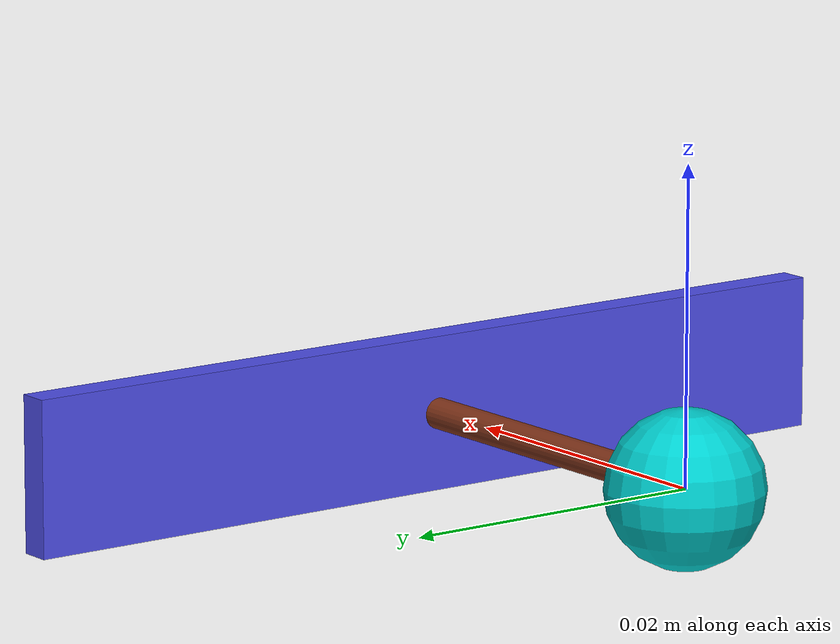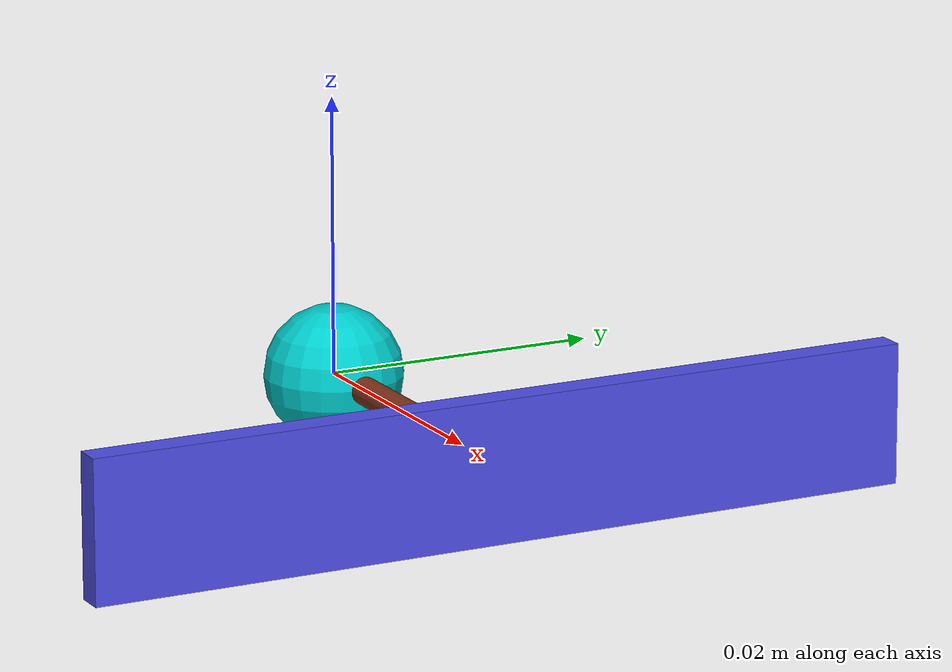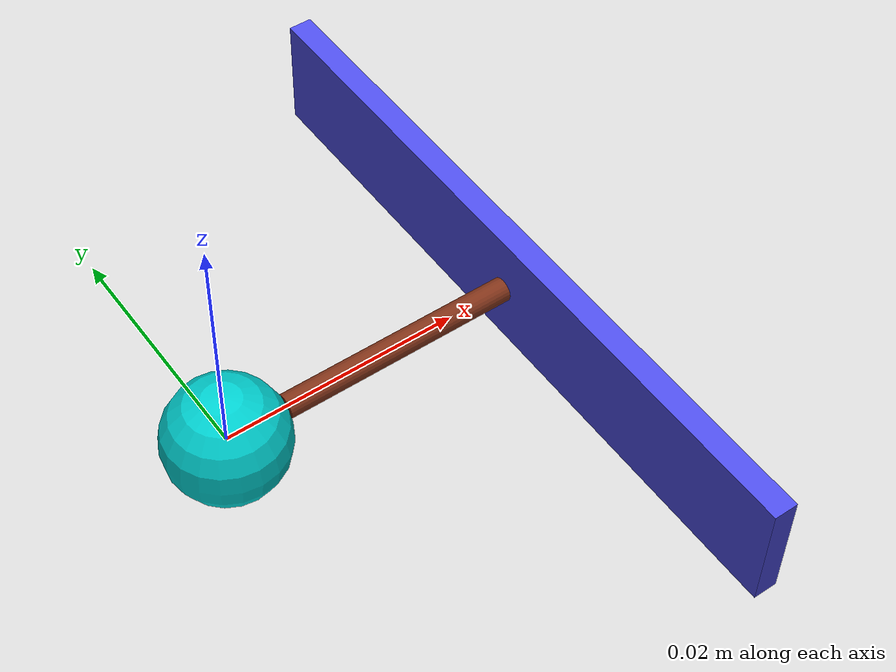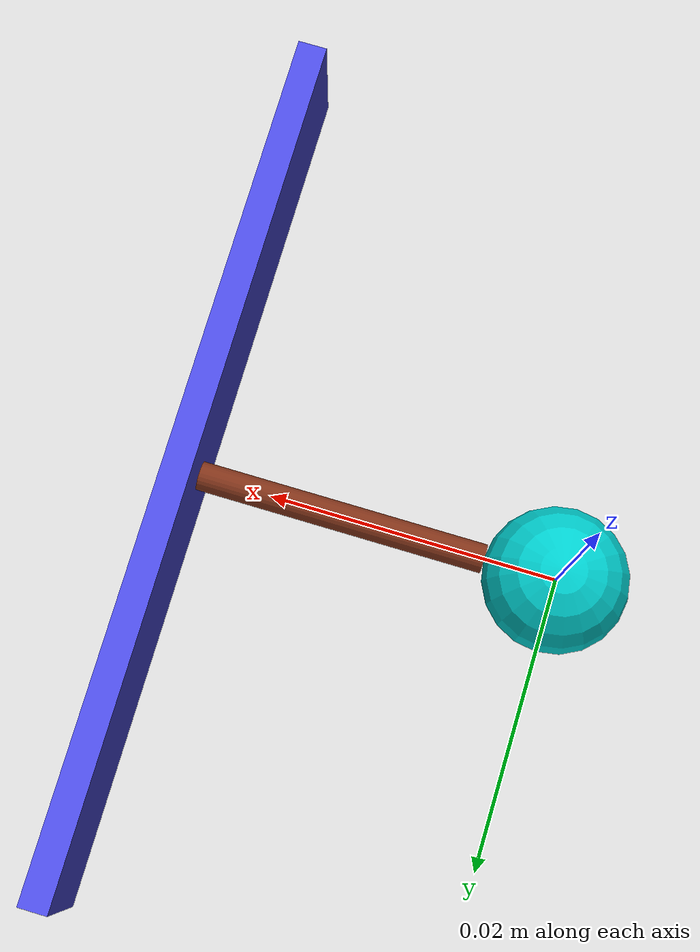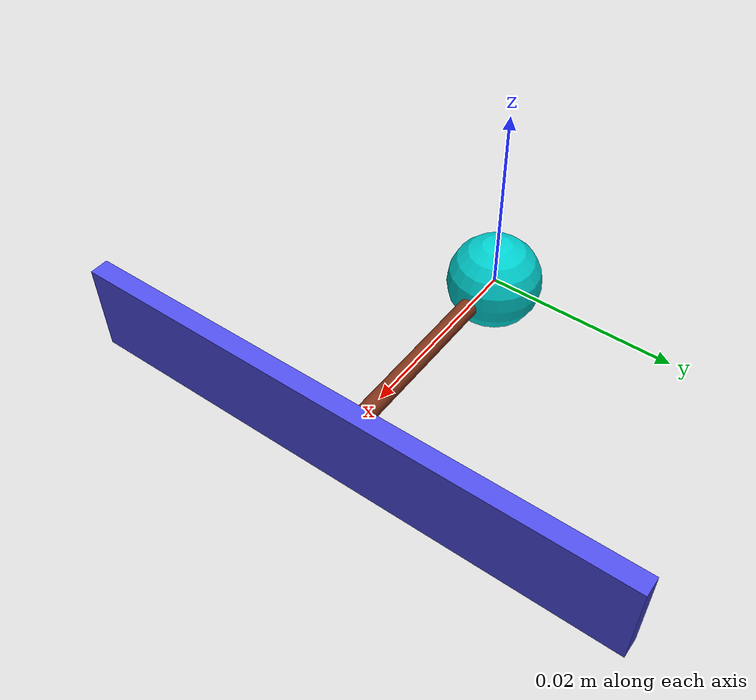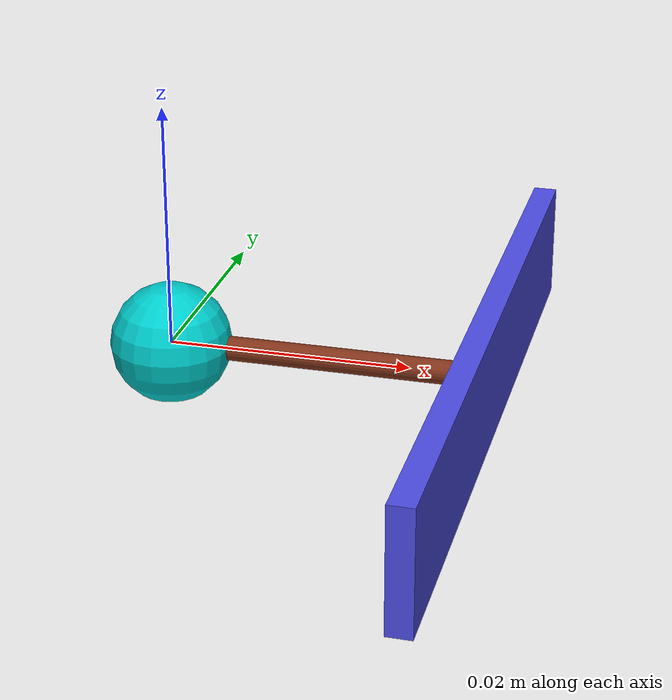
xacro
<?xml version="1.0"?>
<robot xmlns:xacro="http://www.ros.org/wiki/xacro">

    <xacro:property name="rudder_base_radius" value="0.005" />

    <xacro:property name="axis_length" value="0.02" />
    <xacro:property name="axis_radius" value="0.001" />

    <xacro:property name="yaw_limit_rad" value="0.785" />
    <xacro:property name="pitch_limit_rad" value="0.5" />

    <xacro:property name="thruster_radius" value="0.03" />
    <xacro:property name="thruster_thickness" value="0.002" />
    <xacro:property name="thruster_blade_width" value="0.01" />

    <link name="rudder_base">
        <visual>
            <origin xyz="0 0 0" rpy="0 0 0" />
            <geometry>
                <sphere radius="${rudder_base_radius}" />
            </geometry>
            <material name="yellowish1">
                <color rgba="0 0.8 0.8 1" />
            </material>
        </visual>
        <collision>
            <origin xyz="0 0 0" rpy="0 0 0" />
            <geometry>
                <sphere radius="${rudder_base_radius}" />
            </geometry>
        </collision>
        <xacro:sphere_inertia
            m="0.001"
            r="${rudder_base_radius}"
            o_xyz="0 0 0"
            o_rpy="0 0 0"
        />
    </link>

    <link name="rod_link">
        <visual>
            <origin xyz="${axis_length/2} 0 0" rpy="0 ${pi/2} 0" />
            <geometry>
                <cylinder radius="${axis_radius}" length="${axis_length}" />
            </geometry>
            <material name="somecolor2">
                <color rgba="0.5 0.2 0.1 1" />
            </material>
        </visual>
        <collision>
            <origin xyz="${axis_length/2} 0 0" rpy="0 ${pi/2} 0" />
            <geometry>
                <cylinder radius="${axis_radius}" length="${axis_length}" />
            </geometry>
        </collision>
        <xacro:cylinder_inertia
            m="0.001"
            r="${axis_radius}"
            l="${axis_length}"
            o_xyz="${axis_length/2} 0 0"
            o_rpy="0 ${pi/2} 0"
        />
    </link>

    <joint name="yaw_joint" type="revolute">
        <parent link="rudder_base" />
        <child link="rod_intermediate_link" />
        <origin xyz="${rudder_base_radius} 0 0" rpy="0 0 0" />
        <axis xyz="0 0 1" />
        <limit lower="-${yaw_limit_rad}" upper="${yaw_limit_rad}" effort="100" velocity="100" />
    </joint>

    <link name="rod_intermediate_link">
        <inertial>
            <mass value="0.0001" />
            <inertia ixx="0.0001" ixy="0.0" ixz="0.0" iyy="0.0001" iyz="0.0" izz="0.0001" />
            <origin xyz="0 0 0" rpy="0 0 0" />
        </inertial>
    </link>

    <joint name="pitch_joint" type="revolute">
        <parent link="rod_intermediate_link" />
        <child link="rod_link" />
        <axis xyz="0 1 0" />
        <limit lower="-${pitch_limit_rad}" upper="${pitch_limit_rad}" effort="100" velocity="100" />
    </joint>

    <link name="thruster_link">
        <visual>
            <origin xyz="0 0 0" rpy="0 0 0" />
            <geometry>
                <box size="${thruster_thickness} ${thruster_radius*2} ${thruster_blade_width}" />
            </geometry>
            <material name="blueish">
                <color rgba="0.3 0.3 0.9 1" />
            </material>
        </visual>
        <collision>
            <origin xyz="0 0 0" rpy="0 0 0" />
            <geometry>
                <sphere radius="0.005" />
            </geometry>
        </collision>
        <xacro:sphere_inertia m="0.001" r="0.005"
            o_xyz="0 0 0" o_rpy="0 0 0" />
    </link>

    <joint name="cylinder_thruster_joint" type="continuous">
        <parent link="rod_link" />
        <child link="thruster_link" />
        <origin xyz="${axis_length + thruster_thickness/2} 0 0" rpy="0 0 0" />
        <axis xyz="-1 0 0" />
    </joint>

</robot>
